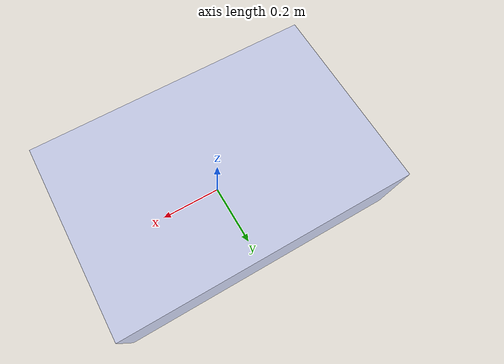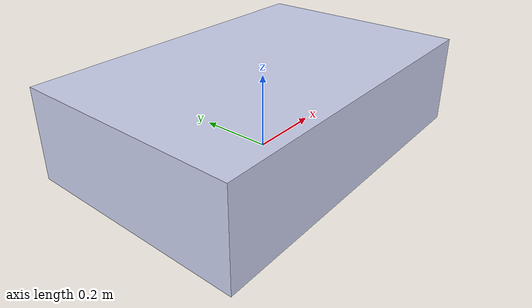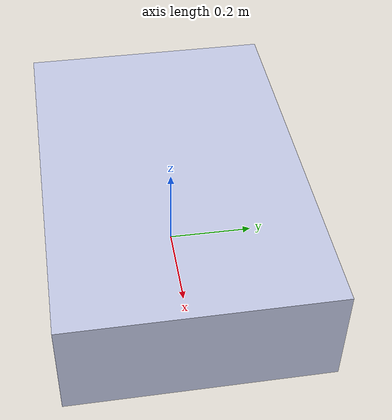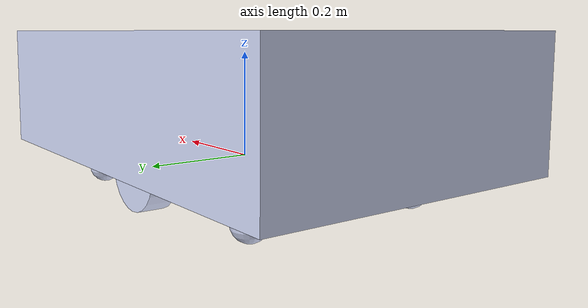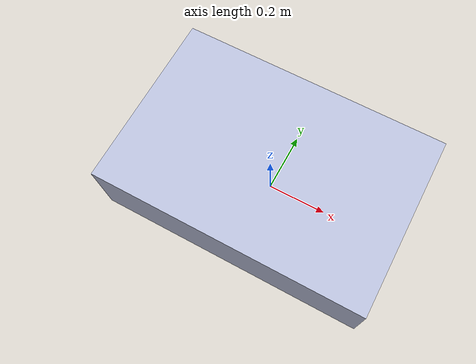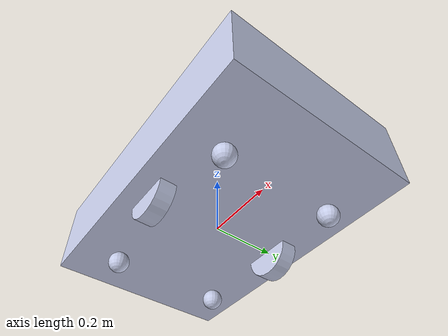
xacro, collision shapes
<?xml version="1.0"?>
<robot name="agv_with_casters" xmlns:xacro="http://www.ros.org/wiki/xacro">

  <xacro:arg name="use_sim" default="false"/>

  <!-- ================= inertia macro ================= -->
  <xacro:macro name="inertial_cylinder" params="mass length radius">
    <inertial>
      <mass value="${mass}" />
      <inertia
        ixx="${(1/12) * mass * (3*radius*radius + length*length)}"
        ixy="0.0" ixz="0.0"
        iyy="${(1/12) * mass * (3*radius*radius + length*length)}"
        iyz="0.0"
        izz="${(1/2) * mass * (radius*radius)}" />
    </inertial>
  </xacro:macro>

  <!-- ================= materials ================= -->
  <material name="amr_blue">
    <color rgba="0.792156862745098 0.819607843137255 0.933333333333333 1"/>
  </material>

  <!-- ================= base_link ================= -->
  <link name="base_link"/>

  <!-- ================= chassis ================= -->
  <joint name="base_to_chassis" type="fixed">
    <parent link="base_link"/>
    <child link="chassis_link"/>
  </joint>

  <link name="chassis_link">
    <visual>
      <geometry>
        <mesh filename="package://robot_kmutnb/meshes/base_link.STL"/>
      </geometry>
      <material name="amr_blue"/>
    </visual>
    <collision>
      <geometry><box size="0.900 0.590 0.24"/></geometry>
      <origin xyz="0 0 0.12"/>
    </collision>
    <inertial>
      <mass value="20.0"/>
      <origin xyz="0 0 0.12"/>
      <inertia ixx="1.2" ixy="0.0" ixz="0.0" iyy="2.0" iyz="0.0" izz="2.5"/>
    </inertial>
  </link>

  <gazebo reference="chassis_link">
    <visual>
      <material>
        <diffuse>0.2 0.2 0.2 1</diffuse>
        <specular>0.2 0.2 0.2 1</specular>
      </material>
    </visual>
  </gazebo>

  <!-- ================= caster macro ================= -->
  <xacro:macro name="caster" params="name mesh_file x y">
    <link name="${name}_link">
      <visual>
        <origin xyz="0 0 0" rpy="1.5708 0 3.1415926535897931"/>
        <geometry>
          <mesh filename="package://robot_kmutnb/meshes/${mesh_file}"/>
        </geometry>
        <material name="amr_blue"/>
      </visual>
      <collision>
        <origin xyz="0 0 -0.0435" rpy="0 0 0"/>
        <geometry><sphere radius="0.0315"/></geometry>
      </collision>
      <inertial>
        <mass value="0.3"/>
        <inertia ixx="0.0001" ixy="0.0" ixz="0.0"
                 iyy="0.0001" iyz="0.0" izz="0.0001"/>
      </inertial>
    </link>
    <joint name="${name}_joint" type="fixed">
      <parent link="chassis_link"/>
      <child link="${name}_link"/>
      <origin xyz="${x} ${y} 0"/>
    </joint>
    <gazebo reference="${name}_link">
      <visual>
        <material>
          <diffuse>1.0 0.0 0.0 1</diffuse>
          <specular>0.5 0.5 0.5 1</specular>
        </material>
      </visual>
      <mu1>0.1</mu1> <mu2>0.1</mu2>
    </gazebo>
  </xacro:macro>

  <!-- ================= casters ================= -->
  <xacro:caster name="caster_fr" mesh_file="CFR_Link.STL" x="0.26248"  y="-0.17556"/>
  <xacro:caster name="caster_fl" mesh_file="CFL_Link.STL" x="0.26248"  y="0.17556"/>
  <xacro:caster name="caster_rr" mesh_file="CBR_Link.STL" x="-0.26248" y="-0.17556"/>
  <xacro:caster name="caster_rl" mesh_file="CBL_Link.STL" x="-0.26248" y="0.17556"/>

  <!-- ================= right wheel ================= -->
  <link name="right_wheel">
    <visual>
      <geometry>
        <mesh filename="package://robot_kmutnb/meshes/R_Link.STL"/>
      </geometry>
      <material name="amr_blue"/>
    </visual>
    <collision>
      <origin xyz="0 0 0" rpy="1.5708 0 0"/>
      <geometry><cylinder radius="0.075" length="0.05"/></geometry>
    </collision>
    <xacro:inertial_cylinder mass="0.5" length="0.05" radius="0.075"/>
  </link>

  <joint name="right_wheel_joint" type="continuous">
    <parent link="chassis_link"/>
    <child link="right_wheel"/>
    <origin xyz="0 -0.215 0"/>   <!-- FIXED: was -0.2397, now -0.295 (half of 0.590) -->
    <axis xyz="0 1 0"/>
  </joint>

  <gazebo reference="right_wheel">
    <visual>
      <material>
        <diffuse>0.0 0.0 0.0 1</diffuse>
        <specular>0.1 0.1 0.1 1</specular>
      </material>
    </visual>
    <mu1>0.8</mu1> <mu2>0.8</mu2>
  </gazebo>

  <!-- ================= left wheel ================= -->
  <link name="left_wheel">
    <visual>
      <geometry>
        <mesh filename="package://robot_kmutnb/meshes/L_Link.STL"/>
      </geometry>
      <material name="amr_blue"/>
    </visual>
    <collision>
      <origin xyz="0 0 0" rpy="1.5708 0 0"/>
      <geometry><cylinder radius="0.075" length="0.05"/></geometry>
    </collision>
    <xacro:inertial_cylinder mass="0.5" length="0.05" radius="0.075"/>
  </link>

  <joint name="left_wheel_joint" type="continuous">
    <parent link="chassis_link"/>
    <child link="left_wheel"/>
    <origin xyz="0 0.215 0"/>    <!-- FIXED: was 0.2397, now 0.295 (half of 0.590) -->
    <axis xyz="0 1 0"/>
  </joint>

  <gazebo reference="left_wheel">
    <visual>
      <material>
        <diffuse>0.0 0.0 0.0 1</diffuse>
        <specular>0.1 0.1 0.1 1</specular>
      </material>
    </visual>
    <mu1>0.8</mu1> <mu2>0.8</mu2>
  </gazebo>

  <!-- ================= ros2_control ================= -->
  <!--
    Switches hardware plugin based on use_sim argument:
      use_sim=true  → GazeboSimSystem (simulation)
      use_sim=false → AMRSystemHardware (real robot, micro-ROS bridge)
  -->
  <ros2_control name="AMRSystem" type="system">
    <hardware>
      <xacro:if value="$(arg use_sim)">
        <plugin>gz_ros2_control/GazeboSimSystem</plugin>
      </xacro:if>
      <xacro:unless value="$(arg use_sim)">
        <plugin>amr_hardware/AMRSystemHardware</plugin>
      </xacro:unless>
    </hardware>

    <joint name="left_wheel_joint">
      <command_interface name="velocity"/>
      <state_interface name="velocity"/>
      <state_interface name="position"/>
    </joint>

    <joint name="right_wheel_joint">
      <command_interface name="velocity"/>
      <state_interface name="velocity"/>
      <state_interface name="position"/>
    </joint>
  </ros2_control>

  <!-- Gazebo plugin — only active in simulation -->
  <xacro:if value="$(arg use_sim)">
    <gazebo>
      <plugin filename="libgazebo_ros2_control.so" name="gazebo_ros2_control"/>
    </gazebo>
  </xacro:if>

</robot>
